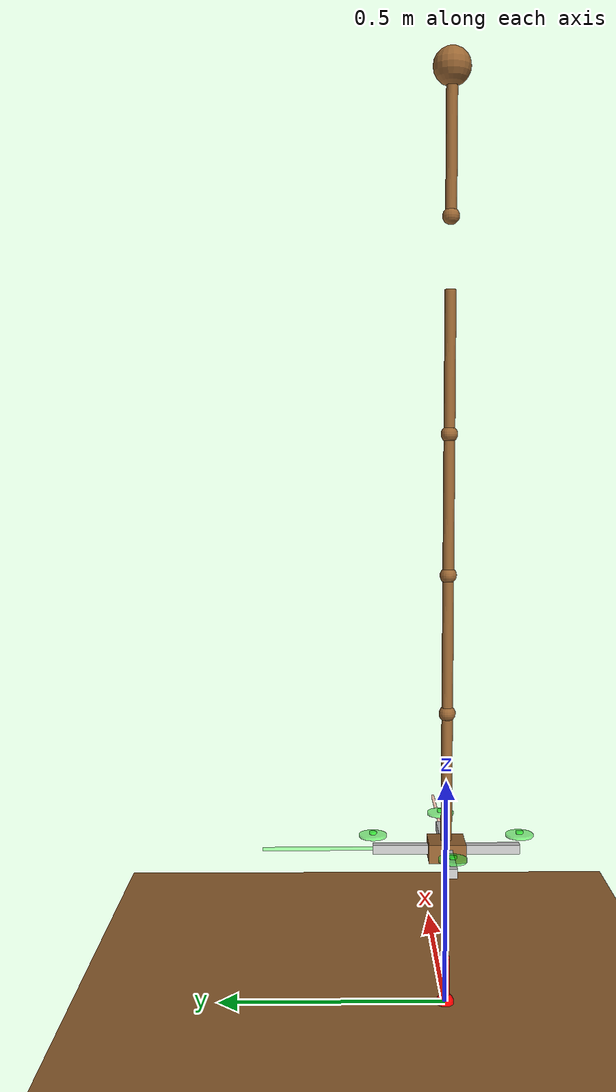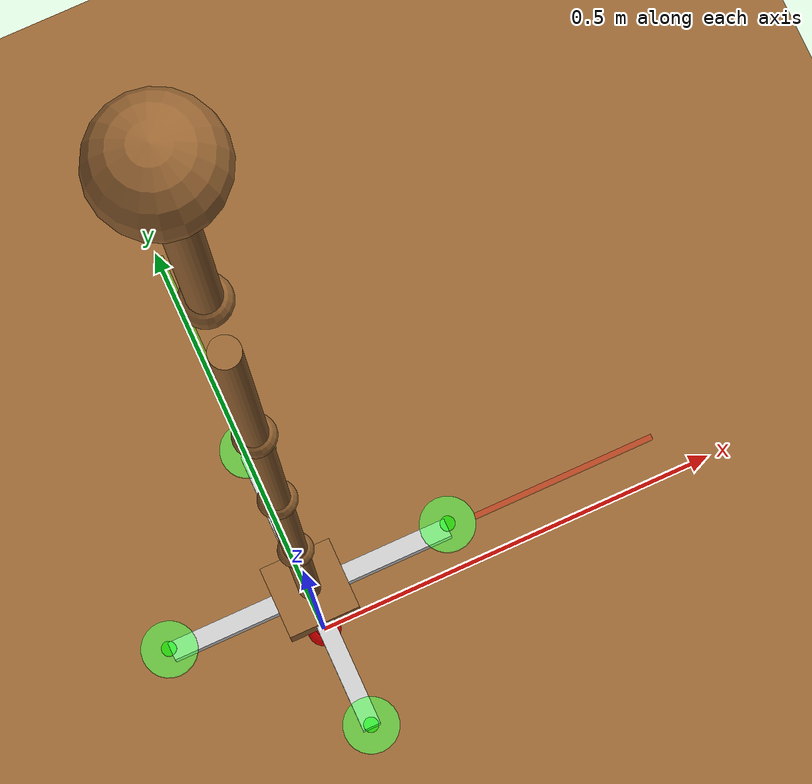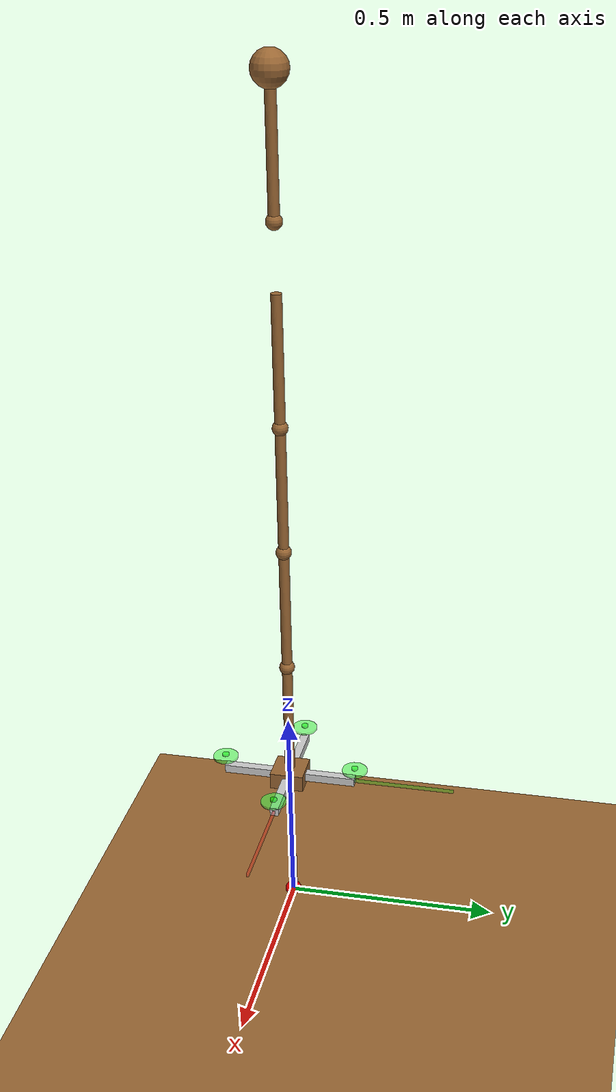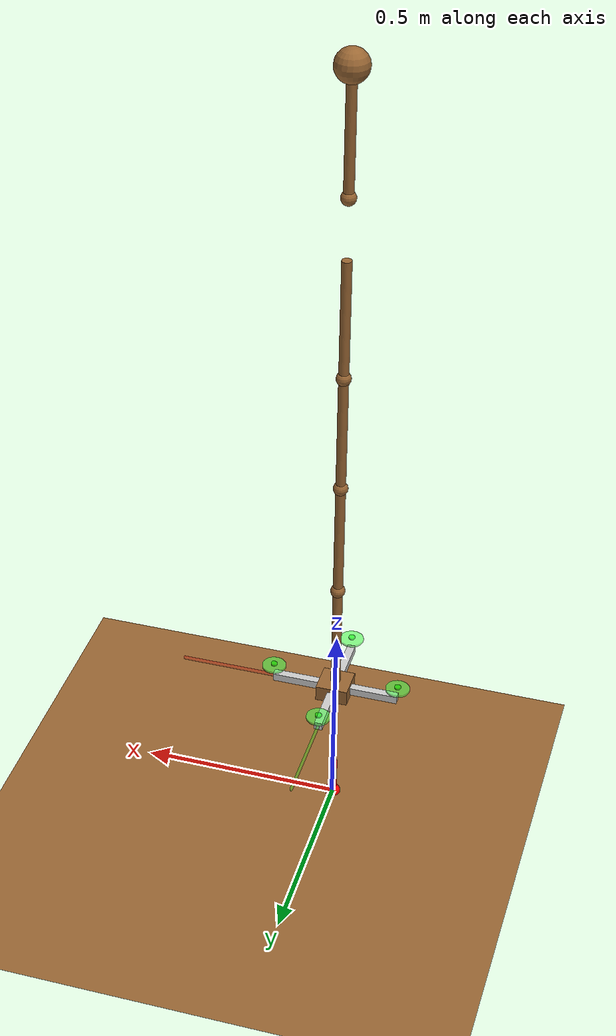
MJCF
<?xml version="1.0" encoding="utf-8"?>
<mujoco model="elastic_rod_drone_v5">

  <compiler angle="radian"/>

  <option timestep="0.001"
          gravity="0 0 -9.81"
          integrator="implicitfast"
          solver="Newton"
          iterations="50"
          tolerance="1e-10"/>

  <default>
    <joint damping="0.15" limited="false"/>
    <geom  contype="1" conaffinity="1" rgba="0.6 0.4 0.2 1"/>
    <!-- ↓ STIFFNESS y DAMPING de los resortes torsionales de la barra ↓ -->
    <default class="spring_hinge">
      <joint type="hinge" stiffness="4" damping="0.15" limited="false"/>
    </default>
  </default>

  <asset>
    <texture type="skybox" builtin="gradient"
             rgb1="0.85 0.92 1.0" rgb2="0.18 0.28 0.55"
             width="512" height="512"/>
    <texture name="tex_floor" type="2d" builtin="checker"
             rgb1="0.72 0.72 0.72" rgb2="0.88 0.88 0.88"
             width="512" height="512"/>
    <material name="mat_floor"   texture="tex_floor" texrepeat="8 8"
              reflectance="0.50" shininess="0.4"/>
    <material name="mat_segment" rgba="0.65 0.42 0.18 1" shininess="0.4"/>
    <material name="mat_joint"   rgba="0.92 0.92 0.92 1" shininess="0.7"/>
    <material name="mat_anchor"  rgba="0.35 0.40 0.95 1" shininess="0.9"/>
    <material name="MatDrone"    rgba="0.18 0.18 0.18 1" shininess="0.9"/>
    <material name="mat_socket"  rgba="0.95 0.75 0.10 1" shininess="1.0"/>
  </asset>

  <worldbody>

    <light name="ambient_light" directional="false"
           pos="0 0 5" dir="0 0 -1"
           diffuse="0.6 0.6 0.6" specular="0.2 0.2 0.2" castshadow="false"/>
    <light name="sun" directional="true"
           pos="2 2 4" dir="-0.5 -0.5 -1"
           diffuse="0.9 0.9 0.85" specular="0.4 0.4 0.4" castshadow="true"/>

    <geom name="floor" type="plane" size="6 6 0.1" material="mat_floor"
          contype="1" conaffinity="1"/>

    <!-- ESFERA ANCLA -->
    <body name="anchor" pos="0 0 2.0">
      <geom name="g_anchor" type="sphere" size="0.04" material="mat_anchor"
            contype="0" conaffinity="0" mass="0.001"/>
      <joint name="root_rx" class="spring_hinge" axis="1 0 0" pos="0 0 0"/>
      <joint name="root_ry" class="spring_hinge" axis="0 1 0" pos="0 0 0"/>

      <!-- ── SEG 1 ── -->
      <!-- ↓ SEG_MASS ↓ -->
      <body name="seg1" pos="0 0 -0.15">
        <geom name="g_seg1" type="cylinder" size="0.012 0.15"
              material="mat_segment" mass="0.00112"/>
        <!-- ↓ JOINT_MASS ↓ -->
        <geom name="g_j1" type="sphere" size="0.018" pos="0 0 -0.15"
              material="mat_joint" contype="0" conaffinity="0" mass="0.002"/>

        <!-- ── SEG 2 ── -->
        <body name="seg2" pos="0 0 -0.30">
          <joint name="j12_rx" class="spring_hinge" axis="1 0 0"/>
          <joint name="j12_ry" class="spring_hinge" axis="0 1 0"/>
          <!-- ↓ SEG_MASS ↓ -->
          <geom name="g_seg2" type="cylinder" size="0.012 0.15"
                material="mat_segment" mass="0.00112" pos="0 0 -0.15"/>
          <!-- ↓ JOINT_MASS ↓ -->
          <geom name="g_j2" type="sphere" size="0.018" pos="0 0 -0.30"
                material="mat_joint" contype="0" conaffinity="0" mass="0.002"/>

          <!-- ── SEG 3 ── -->
          <body name="seg3" pos="0 0 -0.30">
            <joint name="j23_rx" class="spring_hinge" axis="1 0 0"/>
            <joint name="j23_ry" class="spring_hinge" axis="0 1 0"/>
            <!-- ↓ SEG_MASS ↓ -->
            <geom name="g_seg3" type="cylinder" size="0.012 0.15"
                  material="mat_segment" mass="0.00112" pos="0 0 -0.15"/>
            <!-- ↓ JOINT_MASS ↓ -->
            <geom name="g_j3" type="sphere" size="0.018" pos="0 0 -0.30"
                  material="mat_joint" contype="0" conaffinity="0" mass="0.002"/>

            <!-- ── SEG 4 ── -->
            <body name="seg4" pos="0 0 -0.30">
              <joint name="j34_rx" class="spring_hinge" axis="1 0 0"/>
              <joint name="j34_ry" class="spring_hinge" axis="0 1 0"/>
              <!-- ↓ SEG_MASS ↓ -->
              <geom name="g_seg4" type="cylinder" size="0.012 0.15"
                    material="mat_segment" mass="0.00112" pos="0 0 -0.15"/>
              <!-- ↓ JOINT_MASS ↓ -->
              <geom name="g_j4" type="sphere" size="0.018" pos="0 0 -0.30"
                    material="mat_joint" contype="0" conaffinity="0" mass="0.002"/>

              <!-- ── SEG 5 ── -->
              <body name="seg5" pos="0 0 -0.30">
                <joint name="j45_rx" class="spring_hinge" axis="1 0 0"/>
                <joint name="j45_ry" class="spring_hinge" axis="0 1 0"/>
                <!-- ↓ SEG_MASS ↓ -->
                <geom name="g_seg5" type="cylinder" size="0.012 0.15"
                      material="mat_segment" mass="0.00112" pos="0 0 -0.15"/>

                <!-- Esfera decorativa de la rótula -->
                <geom name="g_socket" type="sphere" size="0.022"
                      pos="0 0 -0.30" material="mat_socket"
                      contype="0" conaffinity="0" mass="0"/>

                <!-- DRON – ball joint directo sobre cuerpo con masa real -->
                <body name="drone_3d" pos="0 0 -0.30">
                  <joint name="ball_joint" type="ball"
                         stiffness="0" damping="0.05" limited="false"/>

                  <geom name="drone_body" type="box" size="0.04 0.04 0.02"
                        material="MatDrone" mass="0.30"
                        contype="0" conaffinity="0"/>
                  <site name="com_site" pos="0 0 0" size="0.005" rgba="1 0 0 1"/>

                  <geom name="arm_x_pos" type="box" pos=" 0.10 0 0"
                        size="0.06 0.01 0.01" rgba="0.8 0.8 0.8 1"
                        mass="0.02" contype="0" conaffinity="0"/>
                  <geom name="arm_x_neg" type="box" pos="-0.10 0 0"
                        size="0.06 0.01 0.01" rgba="0.8 0.8 0.8 1"
                        mass="0.02" contype="0" conaffinity="0"/>
                  <geom name="arm_y_pos" type="box" pos="0  0.10 0"
                        size="0.01 0.06 0.01" rgba="0.8 0.8 0.8 1"
                        mass="0.02" contype="0" conaffinity="0"/>
                  <geom name="arm_y_neg" type="box" pos="0 -0.10 0"
                        size="0.01 0.06 0.01" rgba="0.8 0.8 0.8 1"
                        mass="0.02" contype="0" conaffinity="0"/>

                  <body name="prop0" pos=" 0.16  0.00 0.03">
                    <geom type="cylinder" size="0.03 0.003"
                          rgba="0.3 1 0.3 0.6" contype="0" conaffinity="0" mass="0.005"/>
                    <site name="motor0" pos="0 0 0.003" size="0.008" rgba="0 1 0 0.7" type="cylinder"/>
                  </body>
                  <body name="prop1" pos="-0.16  0.00 0.03">
                    <geom type="cylinder" size="0.03 0.003"
                          rgba="0.3 1 0.3 0.6" contype="0" conaffinity="0" mass="0.005"/>
                    <site name="motor1" pos="0 0 0.003" size="0.008" rgba="0 1 0 0.7" type="cylinder"/>
                  </body>
                  <body name="prop2" pos=" 0.00  0.16 0.03">
                    <geom type="cylinder" size="0.03 0.003"
                          rgba="0.3 1 0.3 0.6" contype="0" conaffinity="0" mass="0.005"/>
                    <site name="motor2" pos="0 0 0.003" size="0.008" rgba="0 1 0 0.7" type="cylinder"/>
                  </body>
                  <body name="prop3" pos=" 0.00 -0.16 0.03">
                    <geom type="cylinder" size="0.03 0.003"
                          rgba="0.3 1 0.3 0.6" contype="0" conaffinity="0" mass="0.005"/>
                    <site name="motor3" pos="0 0 0.003" size="0.008" rgba="0 1 0 0.7" type="cylinder"/>
                  </body>

                  <site name="x_axis" type="box" pos="0.20 0 0"
                        size="0.20 0.003 0.003" rgba="1 0 0 0.3"/>
                  <site name="y_axis" type="box" pos="0 0.20 0"
                        size="0.003 0.20 0.003" rgba="0 1 0 0.3"/>
                  <site name="z_axis" type="box" pos="0 0 0.20"
                        size="0.003 0.003 0.20" rgba="0 0 1 0.3"/>

                </body> <!-- /drone_3d -->
              </body>   <!-- /seg5     -->
            </body>     <!-- /seg4     -->
          </body>       <!-- /seg3     -->
        </body>         <!-- /seg2     -->
      </body>           <!-- /seg1     -->
    </body>             <!-- /anchor   -->

    <!-- Flecha mocap roja: F_des -->
    <body name="force_arrow_1" mocap="true" pos="0 0 0">
      <geom name="force_geom_1" type="capsule" size="0.01 0.10"
            rgba="1 0 0 1" contype="0" conaffinity="0" mass="0"/>
    </body>

    <!-- Flecha mocap azul: F estimado -->
    <body name="force_arrow_2" mocap="true" pos="0 0 0">
      <geom name="force_geom_2" type="capsule" size="0.01 0.10"
            rgba="0 0 1 1" contype="0" conaffinity="0" mass="0"/>
    </body>

    <!-- Esfera mocap -->
    <body name="point_marker_1" mocap="true" pos="0 0 0">
      <geom name="point_geom_1" type="sphere" size="0.02"
            rgba="1 0 0 1" contype="0" conaffinity="0" mass="0"/>
    </body>

  </worldbody>

  <!-- ═══════════════════════════════════
       ACTUADORES
       ↓ THRUST_MAX: cambiar "10" en ctrlrange ↓
  ════════════════════════════════════ -->
  <actuator>
    <general name="u1_thrust" site="com_site"
             ctrllimited="true" ctrlrange="0 10"
             gear="0 0 1  0 0 0"/>
    <general name="u2_tau_x"  site="com_site"
             ctrllimited="true" ctrlrange="-1 1"
             gear="0 0 0  1 0 0"/>
    <general name="u3_tau_y"  site="com_site"
             ctrllimited="true" ctrlrange="-1 1"
             gear="0 0 0  0 1 0"/>
    <general name="u4_tau_z"  site="com_site"
             ctrllimited="true" ctrlrange="-0.2 0.2"
             gear="0 0 0  0 0 1"/>
  </actuator>

  <sensor>
    <framepos    name="pos_drone"    objtype="body" objname="drone_3d"/>
    <framequat   name="quat_drone"   objtype="body" objname="drone_3d"/>
    <framelinvel name="linvel_drone" objtype="body" objname="drone_3d"/>
    <frameangvel name="rotvel_drone" objtype="body" objname="drone_3d"/>

    <jointpos name="s_root_rx" joint="root_rx"/>
    <jointpos name="s_root_ry" joint="root_ry"/>
    <jointpos name="s_j12_rx"  joint="j12_rx"/>
    <jointpos name="s_j12_ry"  joint="j12_ry"/>
    <jointpos name="s_j23_rx"  joint="j23_rx"/>
    <jointpos name="s_j23_ry"  joint="j23_ry"/>
    <jointpos name="s_j34_rx"  joint="j34_rx"/>
    <jointpos name="s_j34_ry"  joint="j34_ry"/>
    <jointpos name="s_j45_rx"  joint="j45_rx"/>
    <jointpos name="s_j45_ry"  joint="j45_ry"/>

    <ballquat   name="s_ball_quat"   joint="ball_joint"/>
    <ballangvel name="s_ball_angvel" joint="ball_joint"/>
  </sensor>

</mujoco>
